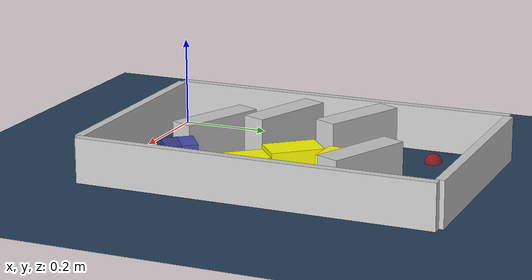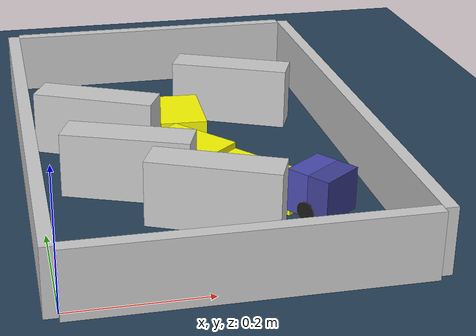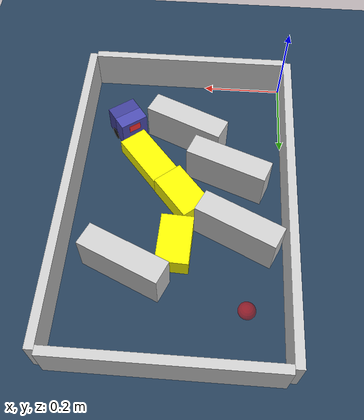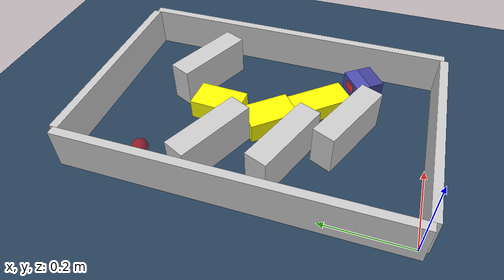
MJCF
<?xml version='1.0' encoding='utf-8'?>
<mujoco model="real_buildable">
  <compiler angle="degree" />
  <option timestep="0.002" integrator="implicitfast" iterations="100" cone="elliptic" />
  <default>
    <geom density="1" />
  </default>
  <asset>
    <texture builtin="gradient" height="3072" rgb1="0.3 0.5 0.7" rgb2="0 0 0" type="skybox" width="512" />
    <texture builtin="checker" height="300" mark="edge" markrgb="0.8 0.8 0.8" name="groundplane" rgb1="0.2 0.3 0.4" rgb2="0.1 0.2 0.3" type="2d" width="300" />
    <material name="groundplane" reflectance="0.2" texrepeat="5 5" texture="groundplane" texuniform="true" />
  </asset>
  <worldbody>
    <light dir="0 0 -1" directional="true" pos="0 0 1.5" />
    <geom name="floor" type="plane" condim="4" friction="0.5 0.005 0.001" material="groundplane" size="0 0 0.05" />
    <body name="walls">
      <geom name="wall_boundary_left" type="box" condim="4" friction="1.0 0.005 0.0001" rgba="0.8 0.8 0.8 1" pos="-0.010000 0.387500 0.050000" euler="0 0 0.000000" size="0.010000 0.397500 0.050000" />
      <geom name="wall_boundary_right" type="box" condim="4" friction="1.0 0.005 0.0001" rgba="0.8 0.8 0.8 1" pos="0.500000 0.387500 0.050000" euler="0 0 0.000000" size="0.010000 0.397500 0.050000" />
      <geom name="wall_boundary_bottom" type="box" condim="4" friction="1.0 0.005 0.0001" rgba="0.8 0.8 0.8 1" pos="0.245000 -0.010000 0.050000" euler="0 0 0.000000" size="0.245000 0.010000 0.050000" />
      <geom name="wall_boundary_top" type="box" condim="4" friction="1.0 0.005 0.0001" rgba="0.8 0.8 0.8 1" pos="0.245000 0.785000 0.050000" euler="0 0 0.000000" size="0.245000 0.010000 0.050000" />
      <geom name="wall_inner_1" type="box" condim="4" friction="1.0 0.005 0.0001" rgba="0.8 0.8 0.8 1" pos="0.132854 0.307641 0.050000" euler="0 0 158.646293" size="0.097500 0.027500 0.050000" />
      <geom name="wall_inner_2" type="box" condim="4" friction="1.0 0.005 0.0001" rgba="0.8 0.8 0.8 1" pos="0.238186 0.186849 0.050000" euler="0 0 156.132141" size="0.097500 0.027500 0.050000" />
      <geom name="wall_inner_3" type="box" condim="4" friction="1.0 0.005 0.0001" rgba="0.8 0.8 0.8 1" pos="0.106000 0.470000 0.050000" euler="0 0 154.200000" size="0.097500 0.027500 0.050000" />
      <geom name="wall_inner_4" type="box" condim="4" friction="1.0 0.005 0.0001" rgba="0.8 0.8 0.8 1" pos="0.350000 0.570000 0.050000" euler="0 0 155.700000" size="0.097500 0.027500 0.050000" />
    </body>
    <body name="car" pos="0.38914000635444718 0.17436755906236959 0.01" quat="0.45145173976036379 0 0 0.89229553773810877">
      <freejoint name="car_freejoint" />
      <inertial pos="0 0 0.0375" mass="0.35" diaginertia="0.000266 0.000266 0.000286" />
      <geom name="front_chassis_collision" type="box" pos="0.0175 0 0.0375" size="0.0175 0.035 0.0325" rgba="0.3 0.3 0.7 1" />
      <geom name="rear_chassis_collision" type="box" pos="-0.0175 0 0.0375" size="0.0175 0.035 0.0325" rgba="0.25 0.25 0.6 1" />
      <geom name="front_marker" type="box" pos="0.034 0 0.0505" size="0.002 0.015 0.01" rgba="1 0.2 0.2 1" contype="0" conaffinity="0" />
      <body name="rear_support_body" pos="-0.03 0 0.0025">
        <joint name="rear_caster_joint" type="ball" damping="0.0001" />
        <inertial pos="0 0 0" mass="0.025" diaginertia="0.000001 0.000001 0.000001" />
        <geom name="rear_support" type="sphere" pos="0 0 0" size="0.0025" friction="0 0 0" rgba="0.7 0.1 0.1 1" />
      </body>
      <body name="front_support_body" pos="0.03 0 0.0025">
        <joint name="front_caster_joint" type="ball" damping="0.0001" />
        <inertial pos="0 0 0" mass="0.025" diaginertia="0.000001 0.000001 0.000001" />
        <geom name="front_support" type="sphere" pos="0 0 0" size="0.0025" friction="0 0 0" rgba="0.1 0.7 0.1 1" />
      </body>
      <body name="left_wheel" pos="0 0.0375 0.015">
        <inertial pos="0 0 0" mass="0.05" diaginertia="0.000003 0.000006 0.000003" />
        <joint name="left_wheel_joint" type="hinge" axis="0 1 0" damping="0.01" armature="0.0001" />
        <geom name="left_wheel_collision" type="cylinder" size="0.015 0.0005" euler="90 0 0" rgba="0.1 0.1 0.1 1" />
      </body>
      <body name="right_wheel" pos="0 -0.0375 0.015">
        <inertial pos="0 0 0" mass="0.05" diaginertia="0.000003 0.000006 0.000003" />
        <joint name="right_wheel_joint" type="hinge" axis="0 1 0" damping="0.01" armature="0.0001" />
        <geom name="right_wheel_collision" type="cylinder" size="0.015 0.0005" euler="90 0 0" rgba="0.1 0.1 0.1 1" />
      </body>
    </body>
    <body name="obstacle_0_movable">
      <geom name="obstacle_0_movable" condim="4" pos="0.32711139600471051 0.27057002013563258 0.02" friction="1 0.005 0.0001" rgba="1 1 0 1" size="0.035000 0.075000 0.020000" type="box" mass="0.1" quat="0.94029315522690426 0 0 0.34036565959778164" />
      <joint type="free" />
    </body>
    <body name="obstacle_1_movable">
      <geom name="obstacle_1_movable" condim="4" pos="0.24561312996335186 0.50250762283480388 0.025000000000000001" friction="1 0.005 0.0001" rgba="1 1 0 1" size="0.037500 0.060000 0.025000" type="box" mass="0.1" quat="0.999732505655197 0 0 -0.023128275689758247" />
      <joint type="free" />
    </body>
    <body name="obstacle_2_movable">
      <geom name="obstacle_2_movable" condim="4" pos="0.23913949086816549 0.37283435377705854 0.025000000000000001" friction="1 0.005 0.0001" rgba="1 1 0 1" size="0.037500 0.060000 0.025000" type="box" mass="0.1" quat="0.93972233389519644 0 0 0.34193849619275818" />
      <joint type="free" />
    </body>
    <site name="goal" type="sphere" pos="0.080000 0.640000 0.0" size="0.02" rgba="1 0 0 0.5" />
  </worldbody>
  <actuator>
    <velocity name="left_wheel_drive" joint="left_wheel_joint" ctrlrange="-25 25" kv="0.75" forcerange="-0.5 0.5" />
    <velocity name="right_wheel_drive" joint="right_wheel_joint" ctrlrange="-25 25" kv="0.75" forcerange="-0.5 0.5" />
  </actuator>
</mujoco>
